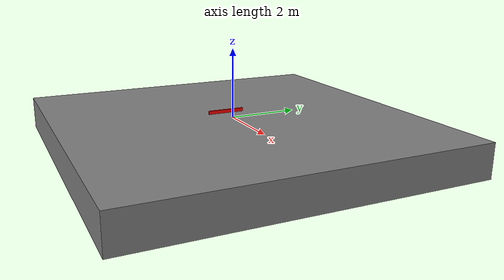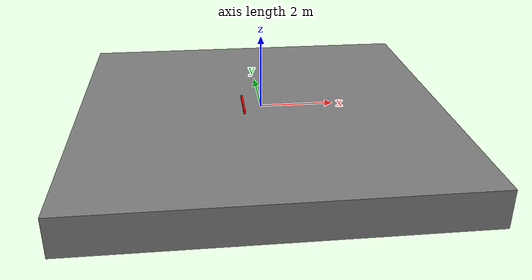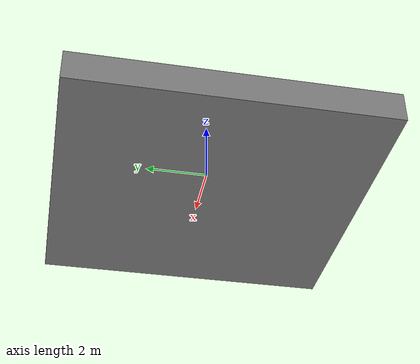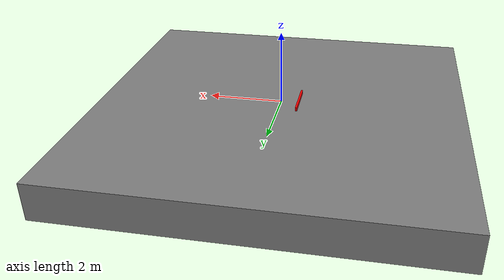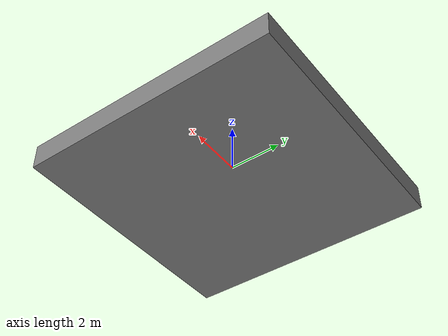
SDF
<sdf version="1.7">
  <model name="conveyor_belt_tool_model">

    <link name="floor">
      <inertial>
        <mass>1.0</mass>
        <inertia>
          <ixx>1</ixx>
          <iyy>1</iyy>
          <izz>1</izz>
          <ixy>0</ixy>
          <ixz>0</ixz>
          <iyz>0</iyz>
        </inertia>
      </inertial>
      <pose>0 0 -0.5 0 0 0  </pose>
      <visual name="floor_visual">
        <geometry>
          <box>
            <size>10 10 1</size>
          </box>
        </geometry>
        <material>
          <ambient>0.5 0.5 0.5 1.0</ambient> <!-- Gray color -->
          <diffuse>0.5 0.5 0.5 1.0</diffuse>
        </material>
      </visual>
      <collision name="floor_collision">
        <geometry>
          <box>
            <size>10 10 1</size>
          </box>
        </geometry>
        <drake:proximity_properties>
          <drake:compliant_hydroelastic/>
          <drake:hydroelastic_modulus>1e8</drake:hydroelastic_modulus>
          <drake:mesh_resolution_hint>0.01</drake:mesh_resolution_hint>
          <drake:mu_dynamic>0.5</drake:mu_dynamic>
          <drake:mu_static>0.6</drake:mu_static>
          <drake:hunt_crossley_dissipation>5</drake:hunt_crossley_dissipation>
        </drake:proximity_properties>
      </collision>
    </link>
    <joint name="fixed_floor" type="fixed">
      <parent>world</parent>
      <child>floor</child>
    </joint>

    <link name="conveyor_belt_tool">
      <inertial>
        <mass>4</mass>
        <inertia>
          <ixx>0.0077083</ixx>
          <iyy>0.0077083</iyy>
          <izz>0.015</izz>
          <ixy>0</ixy>
          <ixz>0</ixz>
          <iyz>0</iyz>
        </inertia>
      </inertial>
      <pose> -0.5 0 0.07 0 0 0 </pose>
      <visual name="conveyor_belt_tool_visual">
        <geometry>
          <box>
            <size> 0.05 1.1 0.1 </size>
          </box>
        </geometry>
        <material>
          <ambient> 1 0 0 1 </ambient>
          <diffuse> 1 0 0 1 </diffuse>
        </material>
      </visual>
      <collision name="conveyor_belt_tool_collision">
        <geometry>
          <box>
            <size> 0.05 1.1 0.1 </size>
          </box>
        </geometry>
        <drake:proximity_properties>
          <drake:compliant_hydroelastic/>
          <drake:hydroelastic_modulus> 1e8 </drake:hydroelastic_modulus>
          <drake:mu_dynamic> 0.8 </drake:mu_dynamic>
          <drake:mu_static> 1.0 </drake:mu_static>
          <drake:hunt_crossley_dissipation>1</drake:hunt_crossley_dissipation>
          <drake:point_contact_stiffness>1e9</drake:point_contact_stiffness>
          <drake:surface_speed>0.5</drake:surface_speed>
          <drake:surface_velocity_normal>0 0 1</drake:surface_velocity_normal>
        </drake:proximity_properties>
      </collision>
    </link>

    <joint name="prismatic_x" type="prismatic">
      <parent>world</parent>
      <child>conveyor_belt_tool</child>
      <axis>
        <xyz>1 0 0</xyz>
        <limit>
          <effort>20</effort>
          <lower>-5</lower>
          <upper>5</upper>
        </limit>
      </axis>
    </joint>

  </model>
</sdf>
